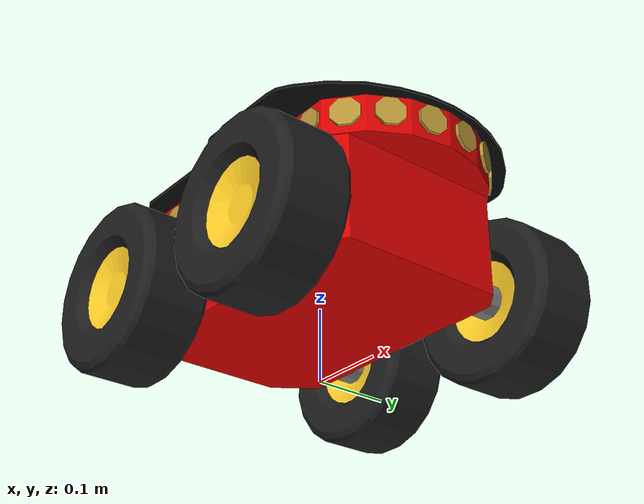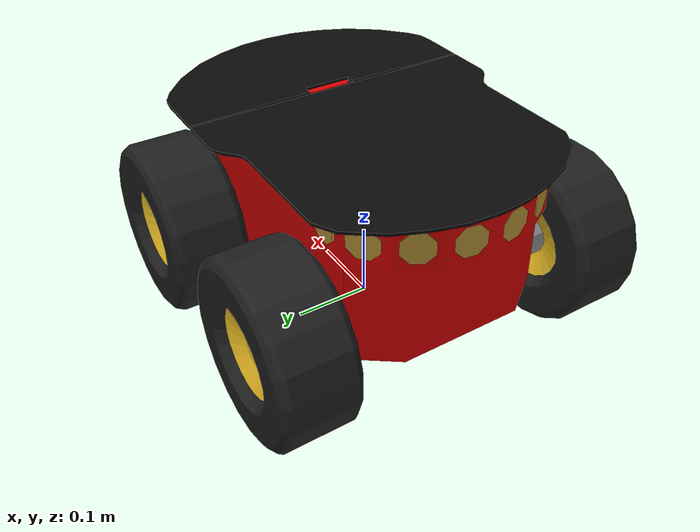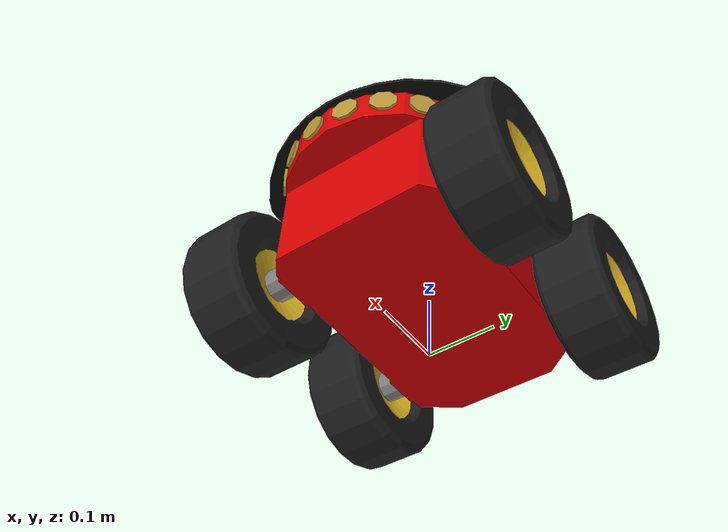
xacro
<?xml version="1.0"?>

<!-- Please note that this URDF will _not_ load in gazebo -->

<robot xmlns:sensor="http://playerstage.sourceforge.net/gazebo/xmlschema/#sensor"
       xmlns:controller="http://playerstage.sourceforge.net/gazebo/xmlschema/#controller"
       xmlns:interface="http://playerstage.sourceforge.net/gazebo/xmlschema/#interface"
       xmlns:xacro="http://ros.org/wiki/xacro"
name="pioneer3at">

<!-- Chassis -->
	<link name="base_link">
		<visual>
			<origin xyz="0 0 0.177" rpy="0 0 0"/>
			<geometry>
				<mesh filename="package://p2os_urdf/meshes/p3at_meshes/chassis.stl"/>
			</geometry>
			<material name="ChassisRed">
				<color rgba="0.851 0.0 0.0 1.0"/>
			</material>
		</visual>
	</link>

<!-- Top -->
	<link name="top_plate">
		<visual>
			<origin xyz="0 0 0" rpy="0 0 0"/>
			<geometry>
				<mesh filename="package://p2os_urdf/meshes/p3at_meshes/top.stl"/>
			</geometry>
			<material name="TopBlack">
					<color rgba="0.038 0.038 0.038 1.0"/>
			</material>
		</visual>
	</link>

	<joint name="base_top_joint" type="fixed">
		<origin xyz="0.003 0 0.274" rpy="0 0 0"/>
		<parent link="base_link"/>
		<child link="top_plate"/>
	</joint>

<!-- Front & Back Sonar -->
	<link name="front_sonar">
		<visual>
			<origin xyz="0 0 0" rpy="0 0 0"/>
			<geometry>
				<mesh filename="package://p2os_urdf/meshes/p3at_meshes/front_sonar.stl"/>
			</geometry>
			<material name="SonarYellow">
				<color rgba="0.715 0.583 0.210 1.0"/>
			</material>
		</visual>
	</link>

	<joint name="base_front_joint" type="fixed">
		<origin xyz="0.193 0 0.25" rpy="0 0 0"/>
		<parent link="base_link"/>
		<child link="front_sonar"/>
	</joint>

	<link name="back_sonar">
		<visual>
			<origin xyz="0 0 0" rpy="0 0 0"/>
			<geometry>
				<mesh filename="package://p2os_urdf/meshes/p3at_meshes/back_sonar.stl"/>
			</geometry>
			<material name="SonarYellow">
				<color rgba="0.715 0.583 0.210 1.0"/>
			</material>
		</visual>
	</link>

	<joint name="base_back_joint" type="fixed">
		<origin xyz="-0.187 0 0.247" rpy="0 0 0"/>
		<parent link="base_link"/>
		<child link="back_sonar"/>
	</joint>

<!-- Front Axles + Wheels + Hubcaps -->
  <xacro:macro name="p3at_front" params="suffix reflect">
	  <link name="p3at_front_${suffix}_axle">
      <visual>
        <origin xyz="0 0 0" rpy="0 0 0"/>
        <geometry>
	        <mesh filename="package://p2os_urdf/meshes/p3at_meshes/axle.stl"/>
        </geometry>
        <material name="AxleGrey">
	        <color rgba="0.5 0.5 0.5 1"/>
        </material>
      </visual>
	  </link>

	  <joint name="base_front_${suffix}_axle_joint" type="fixed">
		  <origin xyz="0.135 ${reflect*0.156} 0.111" rpy="0 0 0"/>
		  <parent link="base_link"/>
		  <child link="p3at_front_${suffix}_axle"/>
	  </joint>

    <link name="p3at_front_${suffix}_hub">
      <visual>
		    <origin xyz="0 0 0" rpy="0 0 0"/>
		    <geometry>
			    <mesh filename="package://p2os_urdf/meshes/p3at_meshes/${suffix}_hubcap.stl"/>
		    </geometry>
		    <material name="HubcapYellow">
			    <color rgba="1.0 0.811 0.151 1.0"/>
		    </material>
	    </visual>
	  </link>

	  <joint name="base_front_${suffix}_hub_joint" type="continuous">
		  <origin xyz="0 ${reflect*0.041} 0" rpy="0 0 0"/>
		  <parent link="p3at_front_${suffix}_axle"/>
		  <child link="p3at_front_${suffix}_hub"/>
		  <axis xyz="0 1 0" />
	  </joint>

	  <link name="p3at_front_${suffix}_wheel">
      <visual>
        <origin xyz="0 0 0" rpy="0 0 0"/>
        <geometry>
	        <mesh filename="package://p2os_urdf/meshes/p3at_meshes/wheel.stl"/>
        </geometry>
        <material name="WheelBlack">
	        <color rgba="0.117 0.117 0.117 1"/>
        </material>
      </visual>
	  </link>

	  <joint name="base_front_${suffix}_wheel_joint" type="fixed">
		  <origin xyz="0 0 0" rpy="0 0 0"/>
		  <parent link="p3at_front_${suffix}_hub"/>
		  <child link="p3at_front_${suffix}_wheel"/>
	  </joint>
  </xacro:macro>

<!-- Back Axles + Wheels + Hubcaps -->
  <xacro:macro name="p3at_back" params="suffix reflect">
	  <link name="p3at_back_${suffix}_axle">
      <visual>
	      <origin xyz="0 0 0" rpy="0 0 0"/>
	      <geometry>
		      <mesh filename="package://p2os_urdf/meshes/p3at_meshes/axle.stl"/>
	      </geometry>
	      <material name="AxleGrey">
		      <color rgba="0.5 0.5 0.5 1"/>
	      </material>
      </visual>
	  </link>

	  <joint name="p3at_back_${suffix}_axle_joint" type="fixed">
		  <origin xyz="-0.134 ${reflect*0.156} 0.111" rpy="0 0 0"/>
		  <parent link="base_link"/>
		  <child link="p3at_back_${suffix}_axle"/>
	  </joint>

	  <link name="p3at_back_${suffix}_hub">
	    <visual>
		    <origin xyz="0 0 0" rpy="0 0 0"/>
		    <geometry>
			    <mesh filename="package://p2os_urdf/meshes/p3at_meshes/${suffix}_hubcap.stl"/>
		    </geometry>
		    <material name="HubcapYellow"/>
	    </visual>
	  </link>

	  <joint name="p3at_back_${suffix}_hub_joint" type="continuous">
		  <origin xyz="-0 ${reflect*0.041} 0" rpy="0 0 0"/>
		  <parent link="p3at_back_${suffix}_axle"/>
		  <child link="p3at_back_${suffix}_hub"/>
		  <axis xyz="0 1 0" />
	  </joint>

	  <link name="p3at_back_${suffix}_wheel">
	    <visual>
		    <origin xyz="0 0 0" rpy="0 0 0"/>
		    <geometry>
			    <mesh filename="package://p2os_urdf/meshes/p3at_meshes/wheel.stl"/>
		    </geometry>
		    <material name="WheelBlack"/>
	    </visual>
	  </link>

	  <joint name="p3at_back_${suffix}_wheel_joint" type="fixed">
		  <origin xyz="0 0 0" rpy="0 0 0"/>
		  <parent link="p3at_back_${suffix}_hub"/>
		  <child link="p3at_back_${suffix}_wheel"/>
	  </joint>
  </xacro:macro>

  <xacro:macro name="Sonar" params="id px py rz">
	  <link name="Sonar_${id}">
      <visual>
	      <origin xyz="0 0 0" rpy="0 1.57 0"/>
	      <geometry>
		      <cylinder radius="0.01" length="0.005"/>
	      </geometry>
	      <material name="SonarGold">
		      <color rgba="0.9 0.6 0.2 1"/>
	      </material>
      </visual>
	  </link>

	  <joint name="Sonar_${id}_joint" type="fixed">
		  <origin xyz="${px} ${py} 0.25" rpy="0 0 ${rz}"/>
		  <parent link="base_link"/>
		  <child link="Sonar_${id}"/>
	  </joint>
  </xacro:macro>

  <xacro:p3at_front suffix="left" reflect="1"/>
  <xacro:p3at_front suffix="right" reflect="-1"/>
  <xacro:p3at_back  suffix="left" reflect="1"/>
  <xacro:p3at_back  suffix="right" reflect="-1"/>

<!-- Sonar data came directly from p2os_driver robot_params.cc -->
  <xacro:Sonar      id="1"  px="0.145"  py="0.13"   rz="1.5705"/>
  <xacro:Sonar      id="2"  px="0.185"  py="0.115"  rz="0.8725"/>
  <xacro:Sonar      id="3"  px="0.22"   py="0.08"   rz="0.5235"/>
  <xacro:Sonar      id="4"  px="0.24"   py="0.025"  rz="0.1745"/>
  <xacro:Sonar      id="5"  px="0.24"   py="-0.025" rz="-0.1745"/>
  <xacro:Sonar      id="6"  px="0.22"   py="-0.08"  rz="-0.5235"/>
  <xacro:Sonar      id="7"  px="0.185"  py="-0.115" rz="-0.8725"/>
  <xacro:Sonar      id="8"  px="0.145"  py="-0.13"  rz="-1.5705"/>
  <xacro:Sonar      id="9"  px="-0.145" py="-0.13"  rz="-1.5705"/>
  <xacro:Sonar      id="10" px="-0.185" py="-0.115" rz="-2.2685"/>
  <xacro:Sonar      id="11" px="-0.22"  py="-0.08"  rz="-2.6175"/>
  <xacro:Sonar      id="12" px="-0.24"  py="-0.025" rz="-2.9665"/>
  <xacro:Sonar      id="13" px="-0.24"  py="0.025"  rz="2.9665"/>
  <xacro:Sonar      id="14" px="-0.22"  py="0.08"   rz="2.6175"/>
  <xacro:Sonar      id="15" px="-0.185" py="0.115"  rz="2.2685"/>
  <xacro:Sonar      id="16" px="-0.145" py="0.13"   rz="1.5705"/>

</robot>
